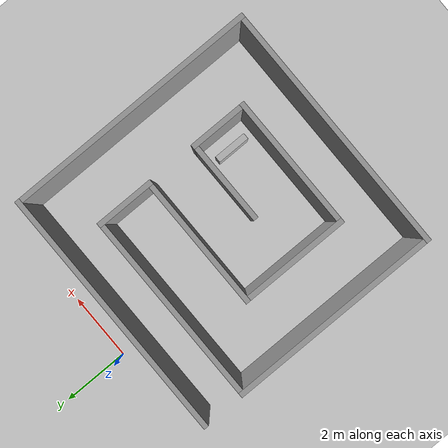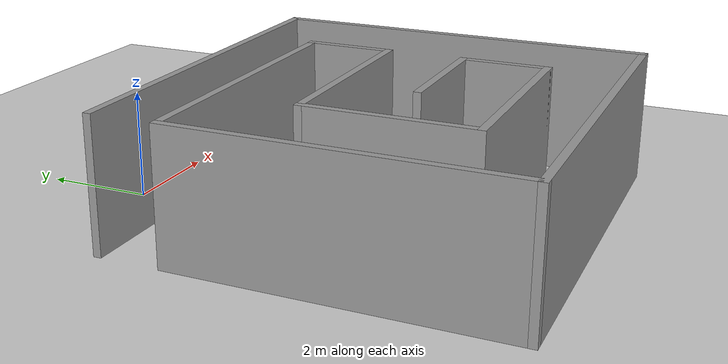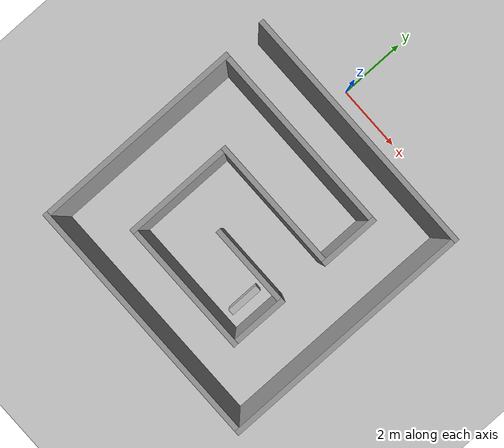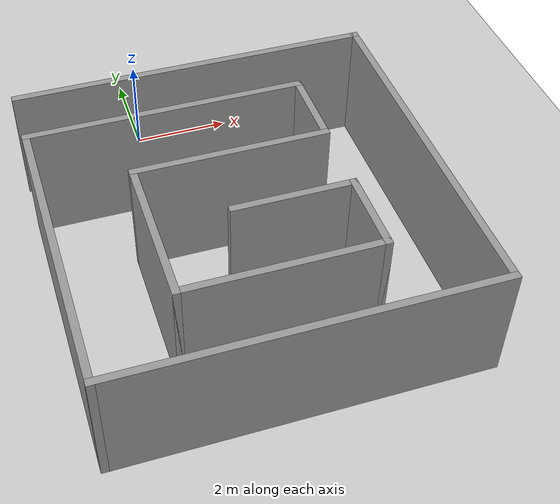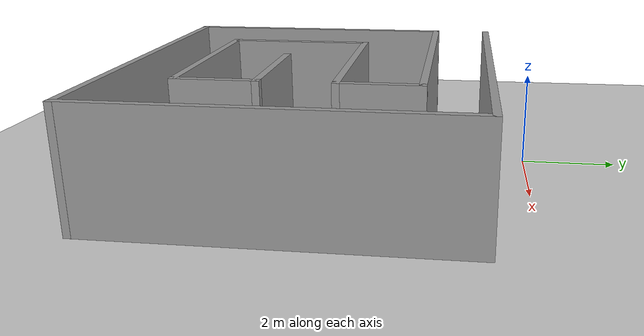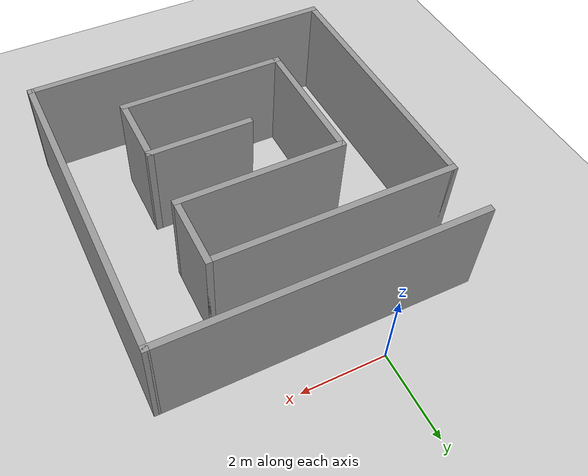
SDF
<sdf version="1.6">
 <world name="default">
  <light name="sun" type="directional">
   <pose>0 0 10 0 -0 0</pose>
   <diffuse>0.8 0.8 0.8 1</diffuse>
   <specular>0.2 0.2 0.2 1</specular>
   <attenuation>
    <range>1000</range>
    <constant>0.9</constant>
    <linear>0.01</linear>
    <quadratic>0.001</quadratic>
   </attenuation>
   <direction>-0.5 0.1 -0.9</direction>
  </light>
  <model name="ground_plane">
   <static>1</static>
   <link name="link">
    <collision name="collision">
     <geometry><plane><normal>0 0 1</normal><size>100 100</size></plane></geometry>
     <surface>
      <contact><collide_bitmask>65535</collide_bitmask></contact>
      <friction><ode><mu>100</mu><mu2>50</mu2></ode></friction>
     </surface>
    </collision>
    <visual name="visual">
     <cast_shadows>0</cast_shadows>
     <geometry><plane><normal>0 0 1</normal><size>100 100</size></plane></geometry>
     <material>
      <script><uri>file://media/materials/scripts/gazebo.material</uri><name>Gazebo/Grey</name></script>
     </material>
    </visual>
   </link>
  </model>
  <gravity>0 0 -9.8</gravity>
  <magnetic_field>6e-06 2.3e-05 -4.2e-05</magnetic_field>
  <atmosphere type="adiabatic"/>
  <physics name="default_physics" default="0" type="ode">
   <max_step_size>0.001</max_step_size>
   <real_time_factor>1</real_time_factor>
   <real_time_update_rate>1000</real_time_update_rate>
  </physics>
  <scene><ambient>0.4 0.4 0.4 1</ambient><background>0.7 0.7 0.7 1</background><shadows>1</shadows></scene>
  <audio><device>default</device></audio>
  <spherical_coordinates>
   <surface_model>EARTH_WGS84</surface_model>
   <latitude_deg>0</latitude_deg>
   <longitude_deg>0</longitude_deg>
   <elevation>0</elevation>
   <heading_deg>0</heading_deg>
  </spherical_coordinates>
  <model name="aruco">
   <pose>1.075 -4.555 0 0 -0 0</pose>
   <link name="Wall_0">
    <collision name="Wall_0_Collision">
     <geometry><box><size>7.5 0.15 2.5</size></box></geometry>
     <pose>0 0 1.25 0 -0 0</pose>
    </collision>
    <visual name="Wall_0_Visual">
     <pose>0 0 1.25 0 -0 0</pose>
     <geometry><box><size>7.5 0.15 2.5</size></box></geometry>
     <material>
      <script><uri>file://media/materials/scripts/gazebo.material</uri><name>Gazebo/Grey</name></script>
      <ambient>1 1 1 1</ambient>
     </material>
     <meta><layer>0</layer></meta>
    </visual>
    <pose>0 3.675 0 0 -0 0</pose>
   </link>
   <link name="Wall_10">
    <collision name="Wall_10_Collision">
     <geometry><box><size>1.75 0.15 2.5</size></box></geometry>
     <pose>0 0 1.25 0 -0 0</pose>
    </collision>
    <visual name="Wall_10_Visual">
     <pose>0 0 1.25 0 -0 0</pose>
     <geometry><box><size>1.75 0.15 2.5</size></box></geometry>
     <material>
      <script><uri>file://media/materials/scripts/gazebo.material</uri><name>Gazebo/Grey</name></script>
      <ambient>1 1 1 1</ambient>
     </material>
     <meta><layer>0</layer></meta>
    </visual>
    <pose>1.925 1.625 0 0 -0 -1.5708</pose>
   </link>
   <link name="Wall_11">
    <collision name="Wall_11_Collision">
     <geometry><box><size>4 0.15 2.5</size></box></geometry>
     <pose>0 0 1.25 0 -0 0</pose>
    </collision>
    <visual name="Wall_11_Visual">
     <pose>0 0 1.25 0 -0 0</pose>
     <geometry><box><size>4 0.15 2.5</size></box></geometry>
     <material>
      <script><uri>file://media/materials/scripts/gazebo.material</uri><name>Gazebo/Grey</name></script>
      <ambient>1 1 1 1</ambient>
     </material>
     <meta><layer>0</layer></meta>
    </visual>
    <pose>0 0.825 0 0 -0 3.14159</pose>
   </link>
   <link name="Wall_12">
    <collision name="Wall_12_Collision">
     <geometry><box><size>3.25 0.15 2.5</size></box></geometry>
     <pose>0 0 1.25 0 -0 0</pose>
    </collision>
    <visual name="Wall_12_Visual">
     <pose>0 0 1.25 0 -0 0</pose>
     <geometry><box><size>3.25 0.15 2.5</size></box></geometry>
     <material>
      <script><uri>file://media/materials/scripts/gazebo.material</uri><name>Gazebo/Grey</name></script>
      <ambient>1 1 1 1</ambient>
     </material>
     <meta><layer>0</layer></meta>
    </visual>
    <pose>-1.925 -0.725 0 0 -0 -1.5708</pose>
   </link>
   <link name="Wall_13">
    <collision name="Wall_13_Collision">
     <geometry><box><size>4 0.15 2.5</size></box></geometry>
     <pose>0 0 1.25 0 -0 0</pose>
    </collision>
    <visual name="Wall_13_Visual">
     <pose>0 0 1.25 0 -0 0</pose>
     <geometry><box><size>4 0.15 2.5</size></box></geometry>
     <material>
      <script><uri>file://media/materials/scripts/gazebo.material</uri><name>Gazebo/Grey</name></script>
      <ambient>1 1 1 1</ambient>
     </material>
     <meta><layer>0</layer></meta>
    </visual>
    <pose>0 -2.275 0 0 -0 0</pose>
   </link>
   <link name="Wall_14">
    <collision name="Wall_14_Collision">
     <geometry><box><size>1.75 0.15 2.5</size></box></geometry>
     <pose>0 0 1.25 0 -0 0</pose>
    </collision>
    <visual name="Wall_14_Visual">
     <pose>0 0 1.25 0 -0 0</pose>
     <geometry><box><size>1.75 0.15 2.5</size></box></geometry>
     <material>
      <script><uri>file://media/materials/scripts/gazebo.material</uri><name>Gazebo/Grey</name></script>
      <ambient>1 1 1 1</ambient>
     </material>
     <meta><layer>0</layer></meta>
    </visual>
    <pose>1.925 -1.475 0 0 -0 1.5708</pose>
   </link>
   <link name="Wall_15">
    <collision name="Wall_15_Collision">
     <geometry><box><size>2.5 0.15 2.5</size></box></geometry>
     <pose>0 0 1.25 0 -0 0</pose>
    </collision>
    <visual name="Wall_15_Visual">
     <pose>0 0 1.25 0 -0 0</pose>
     <geometry><box><size>2.5 0.15 2.5</size></box></geometry>
     <material>
      <script><uri>file://media/materials/scripts/gazebo.material</uri><name>Gazebo/Grey</name></script>
      <ambient>1 1 1 1</ambient>
     </material>
     <meta><layer>0</layer></meta>
    </visual>
    <pose>0.75 -0.675 0 0 -0 3.14159</pose>
   </link>
   <link name="Wall_5">
    <collision name="Wall_5_Collision">
     <geometry><box><size>7.5 0.15 2.5</size></box></geometry>
     <pose>0 0 1.25 0 -0 0</pose>
    </collision>
    <visual name="Wall_5_Visual">
     <pose>0 0 1.25 0 -0 0</pose>
     <geometry><box><size>7.5 0.15 2.5</size></box></geometry>
     <material>
      <script><uri>file://media/materials/scripts/gazebo.material</uri><name>Gazebo/Grey</name></script>
      <ambient>1 1 1 1</ambient>
     </material>
     <meta><layer>0</layer></meta>
    </visual>
    <pose>3.675 0 0 0 -0 -1.5708</pose>
   </link>
   <link name="Wall_6">
    <collision name="Wall_6_Collision">
     <geometry><box><size>7.5 0.15 2.5</size></box></geometry>
     <pose>0 0 1.25 0 -0 0</pose>
    </collision>
    <visual name="Wall_6_Visual">
     <pose>0 0 1.25 0 -0 0</pose>
     <geometry><box><size>7.5 0.15 2.5</size></box></geometry>
     <material>
      <script><uri>file://media/materials/scripts/gazebo.material</uri><name>Gazebo/Grey</name></script>
      <ambient>1 1 1 1</ambient>
     </material>
     <meta><layer>0</layer></meta>
    </visual>
    <pose>0 -3.675 0 0 -0 3.14159</pose>
   </link>
   <link name="Wall_8">
    <collision name="Wall_8_Collision">
     <geometry><box><size>6.25 0.15 2.5</size></box></geometry>
     <pose>0 0 1.25 0 -0 0</pose>
    </collision>
    <visual name="Wall_8_Visual">
     <pose>0 0 1.25 0 -0 0</pose>
     <geometry><box><size>6.25 0.15 2.5</size></box></geometry>
     <material>
      <script><uri>file://media/materials/scripts/gazebo.material</uri><name>Gazebo/Grey</name></script>
      <ambient>1 1 1 1</ambient>
     </material>
     <meta><layer>0</layer></meta>
    </visual>
    <pose>-3.675 -0.625 0 0 -0 1.5708</pose>
   </link>
   <link name="Wall_9">
    <collision name="Wall_9_Collision">
     <geometry><box><size>5.75 0.15 2.5</size></box></geometry>
     <pose>0 0 1.25 0 -0 0</pose>
    </collision>
    <visual name="Wall_9_Visual">
     <pose>0 0 1.25 0 -0 0</pose>
     <geometry><box><size>5.75 0.15 2.5</size></box></geometry>
     <material>
      <script><uri>file://media/materials/scripts/gazebo.material</uri><name>Gazebo/Grey</name></script>
      <ambient>1 1 1 1</ambient>
     </material>
     <meta><layer>0</layer></meta>
    </visual>
    <pose>-0.875 2.425 0 0 -0 0</pose>
   </link>
   <static>1</static>
  </model>
  <model name="unit_box">
   <pose>2.44436 -6.00429 0.5 0 1e-06 -4.4e-05</pose>
   <link name="link">
    <inertial>
     <mass>1</mass>
     <inertia>
      <ixx>0.166667</ixx>
      <ixy>0</ixy>
      <ixz>0</ixz>
      <iyy>0.166667</iyy>
      <iyz>0</iyz>
      <izz>0.166667</izz>
     </inertia>
    </inertial>
    <collision name="collision"><geometry><box><size>0.18826 1 2</size></box></geometry></collision>
    <visual name="visual">
     <geometry><box><size>0.18826 1 1</size></box></geometry>
     <material>
      <script><uri>file://scripts</uri><uri>file://textures</uri><name>aruco/standard</name></script>
     </material>
    </visual>
   </link>
  </model>
 </world>
</sdf>
